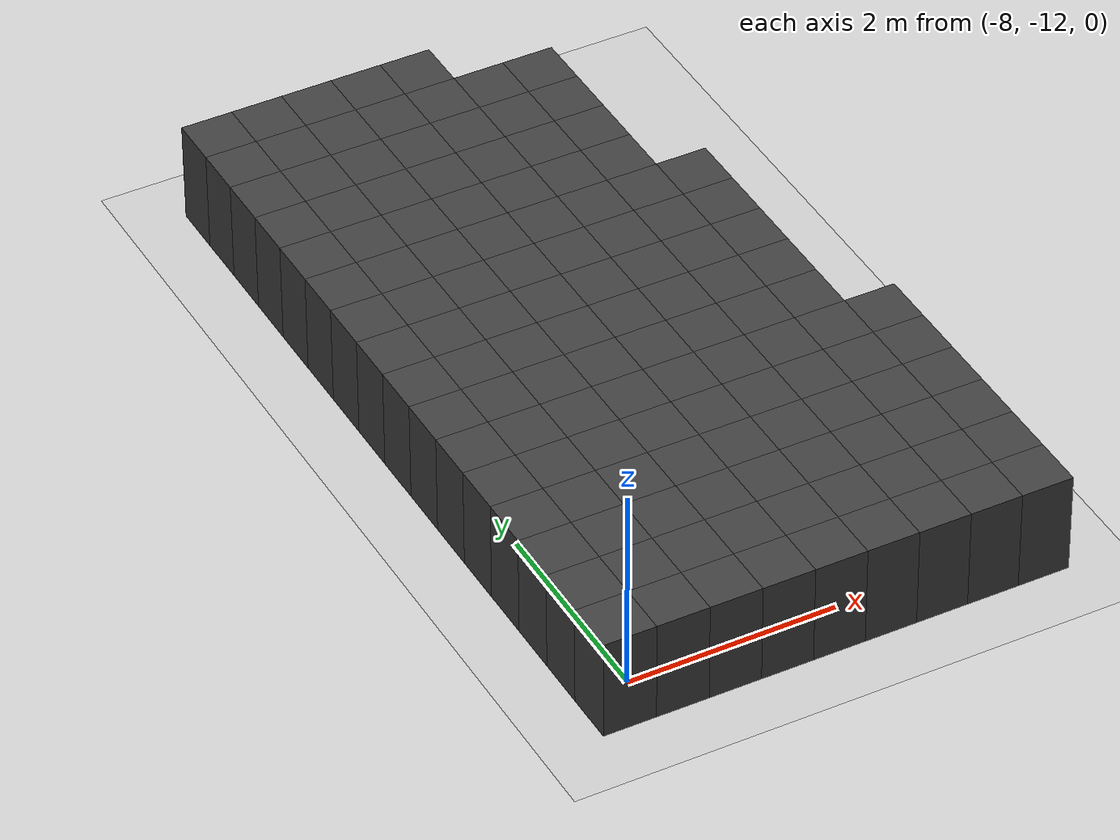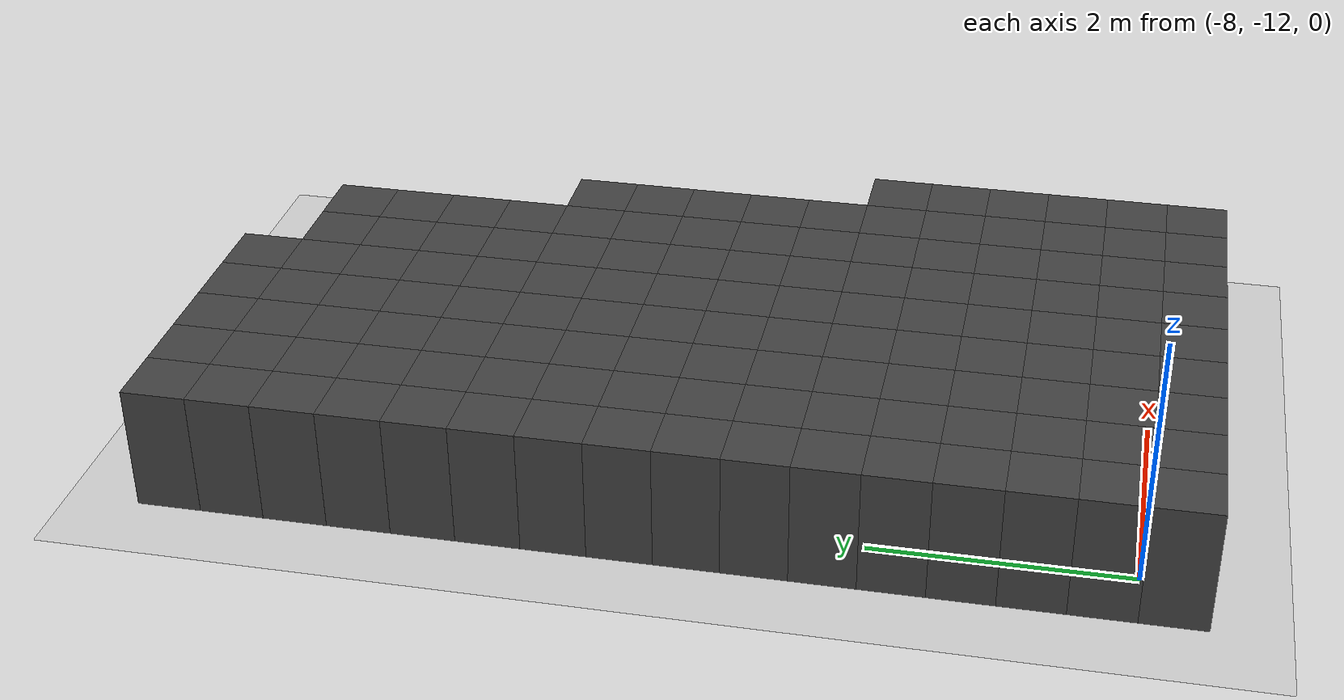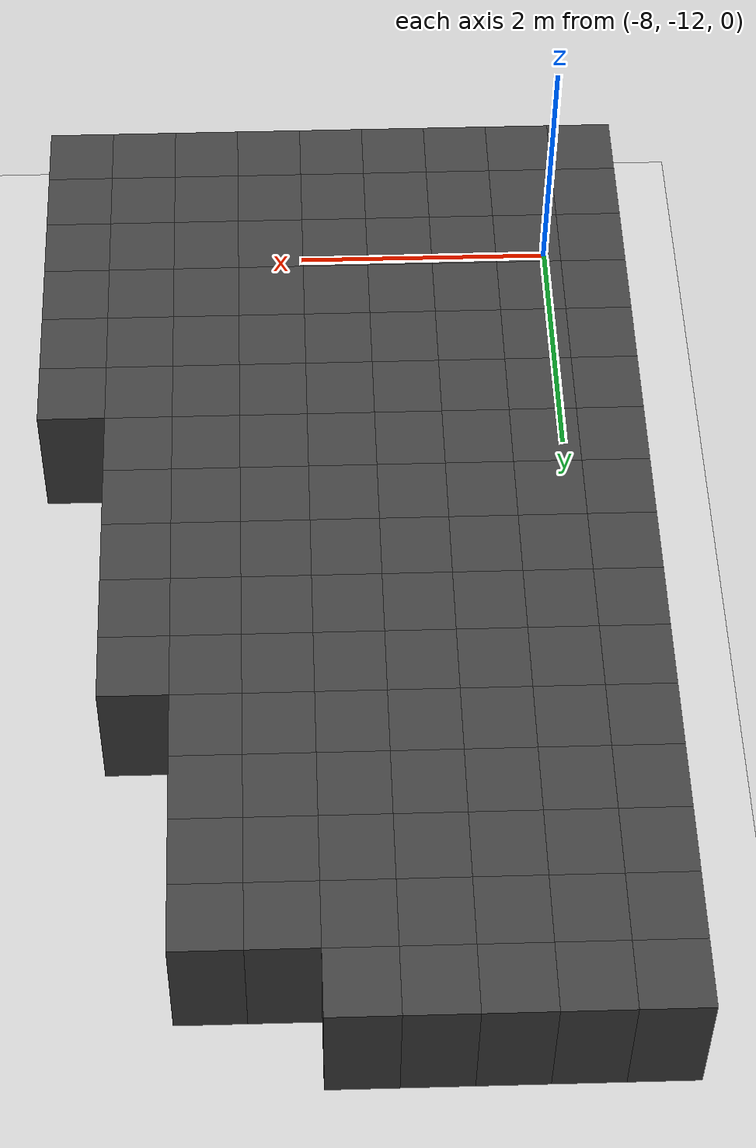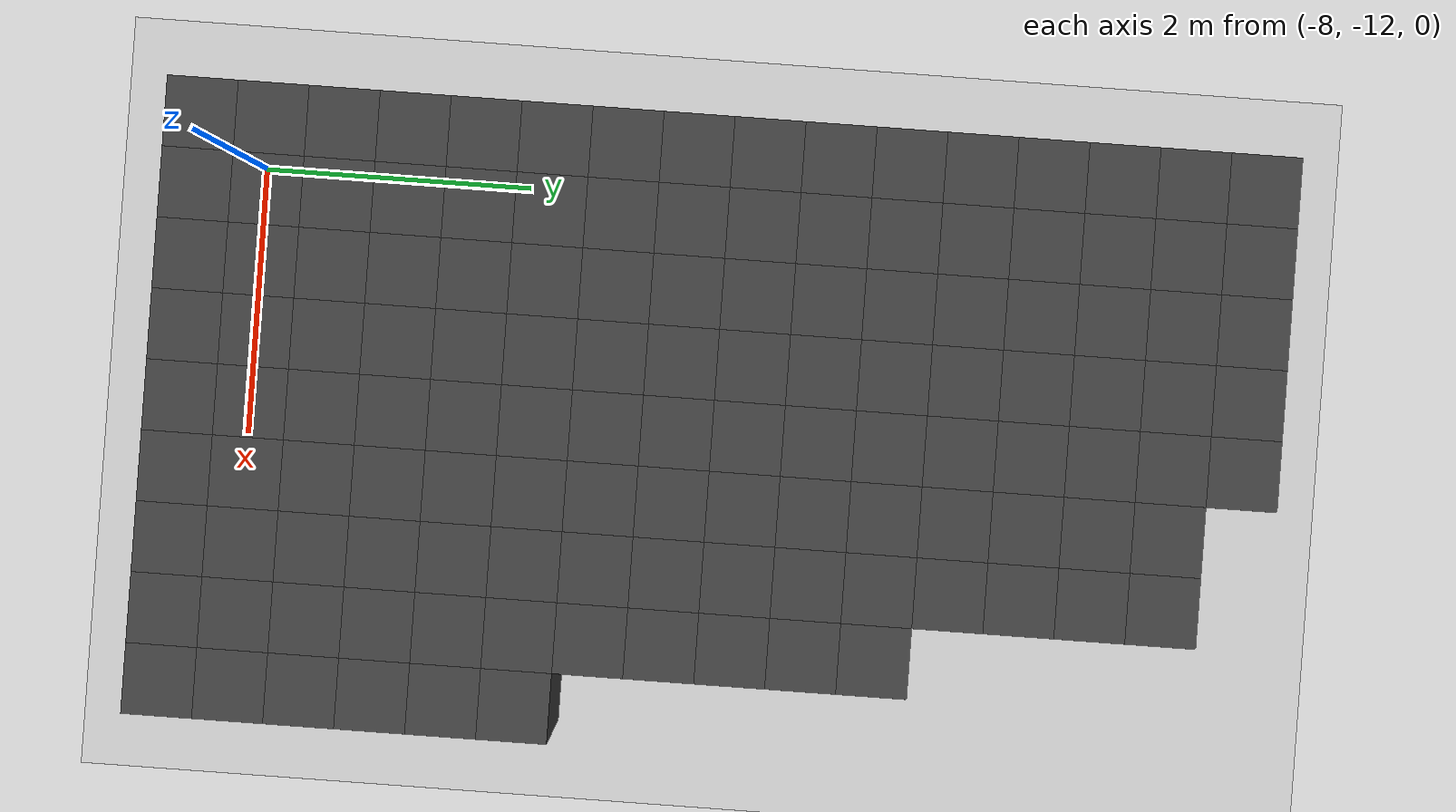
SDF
<sdf version="1.7">
 <world name="map_14735">
  <model name="ground_plane">
   <static>true</static>
   <link name="link">
    <collision name="collision">
     <geometry><plane><normal>0 0 1</normal><size>200 200</size></plane></geometry>
    </collision>
    <visual name="visual">
     <geometry><plane><normal>0 0 1</normal><size>200 200</size></plane></geometry>
     <material><ambient>0.8 0.8 0.8 1</ambient><diffuse>0.8 0.8 0.8 1</diffuse></material>
    </visual>
   </link>
  </model>
  <model name="maze_environment">
   <static>true</static>
   <link name="wall_1110">
    <pose>-8.250 -4.750 0.500 0 0 0</pose>
    <collision name="col"><geometry><box><size>0.5 0.5 1.0</size></box></geometry></collision>
    <visual name="vis">
     <geometry><box><size>0.5 0.5 1.0</size></box></geometry>
     <material><ambient>0.15 0.15 0.15 1</ambient><diffuse>0.25 0.25 0.25 1</diffuse></material>
    </visual>
   </link>
   <link name="wall_1111">
    <pose>-7.750 -4.750 0.500 0 0 0</pose>
    <collision name="col"><geometry><box><size>0.5 0.5 1.0</size></box></geometry></collision>
    <visual name="vis">
     <geometry><box><size>0.5 0.5 1.0</size></box></geometry>
     <material><ambient>0.15 0.15 0.15 1</ambient><diffuse>0.25 0.25 0.25 1</diffuse></material>
    </visual>
   </link>
   <link name="wall_1112">
    <pose>-7.250 -4.750 0.500 0 0 0</pose>
    <collision name="col"><geometry><box><size>0.5 0.5 1.0</size></box></geometry></collision>
    <visual name="vis">
     <geometry><box><size>0.5 0.5 1.0</size></box></geometry>
     <material><ambient>0.15 0.15 0.15 1</ambient><diffuse>0.25 0.25 0.25 1</diffuse></material>
    </visual>
   </link>
   <link name="wall_1113">
    <pose>-6.750 -4.750 0.500 0 0 0</pose>
    <collision name="col"><geometry><box><size>0.5 0.5 1.0</size></box></geometry></collision>
    <visual name="vis">
     <geometry><box><size>0.5 0.5 1.0</size></box></geometry>
     <material><ambient>0.15 0.15 0.15 1</ambient><diffuse>0.25 0.25 0.25 1</diffuse></material>
    </visual>
   </link>
   <link name="wall_1114">
    <pose>-6.250 -4.750 0.500 0 0 0</pose>
    <collision name="col"><geometry><box><size>0.5 0.5 1.0</size></box></geometry></collision>
    <visual name="vis">
     <geometry><box><size>0.5 0.5 1.0</size></box></geometry>
     <material><ambient>0.15 0.15 0.15 1</ambient><diffuse>0.25 0.25 0.25 1</diffuse></material>
    </visual>
   </link>
   <link name="wall_1150">
    <pose>-8.250 -5.250 0.500 0 0 0</pose>
    <collision name="col"><geometry><box><size>0.5 0.5 1.0</size></box></geometry></collision>
    <visual name="vis">
     <geometry><box><size>0.5 0.5 1.0</size></box></geometry>
     <material><ambient>0.15 0.15 0.15 1</ambient><diffuse>0.25 0.25 0.25 1</diffuse></material>
    </visual>
   </link>
   <link name="wall_1151">
    <pose>-7.750 -5.250 0.500 0 0 0</pose>
    <collision name="col"><geometry><box><size>0.5 0.5 1.0</size></box></geometry></collision>
    <visual name="vis">
     <geometry><box><size>0.5 0.5 1.0</size></box></geometry>
     <material><ambient>0.15 0.15 0.15 1</ambient><diffuse>0.25 0.25 0.25 1</diffuse></material>
    </visual>
   </link>
   <link name="wall_1152">
    <pose>-7.250 -5.250 0.500 0 0 0</pose>
    <collision name="col"><geometry><box><size>0.5 0.5 1.0</size></box></geometry></collision>
    <visual name="vis">
     <geometry><box><size>0.5 0.5 1.0</size></box></geometry>
     <material><ambient>0.15 0.15 0.15 1</ambient><diffuse>0.25 0.25 0.25 1</diffuse></material>
    </visual>
   </link>
   <link name="wall_1153">
    <pose>-6.750 -5.250 0.500 0 0 0</pose>
    <collision name="col"><geometry><box><size>0.5 0.5 1.0</size></box></geometry></collision>
    <visual name="vis">
     <geometry><box><size>0.5 0.5 1.0</size></box></geometry>
     <material><ambient>0.15 0.15 0.15 1</ambient><diffuse>0.25 0.25 0.25 1</diffuse></material>
    </visual>
   </link>
   <link name="wall_1154">
    <pose>-6.250 -5.250 0.500 0 0 0</pose>
    <collision name="col"><geometry><box><size>0.5 0.5 1.0</size></box></geometry></collision>
    <visual name="vis">
     <geometry><box><size>0.5 0.5 1.0</size></box></geometry>
     <material><ambient>0.15 0.15 0.15 1</ambient><diffuse>0.25 0.25 0.25 1</diffuse></material>
    </visual>
   </link>
   <link name="wall_1155">
    <pose>-5.750 -5.250 0.500 0 0 0</pose>
    <collision name="col"><geometry><box><size>0.5 0.5 1.0</size></box></geometry></collision>
    <visual name="vis">
     <geometry><box><size>0.5 0.5 1.0</size></box></geometry>
     <material><ambient>0.15 0.15 0.15 1</ambient><diffuse>0.25 0.25 0.25 1</diffuse></material>
    </visual>
   </link>
   <link name="wall_1156">
    <pose>-5.250 -5.250 0.500 0 0 0</pose>
    <collision name="col"><geometry><box><size>0.5 0.5 1.0</size></box></geometry></collision>
    <visual name="vis">
     <geometry><box><size>0.5 0.5 1.0</size></box></geometry>
     <material><ambient>0.15 0.15 0.15 1</ambient><diffuse>0.25 0.25 0.25 1</diffuse></material>
    </visual>
   </link>
   <link name="wall_1188">
    <pose>-8.250 -5.750 0.500 0 0 0</pose>
    <collision name="col"><geometry><box><size>0.5 0.5 1.0</size></box></geometry></collision>
    <visual name="vis">
     <geometry><box><size>0.5 0.5 1.0</size></box></geometry>
     <material><ambient>0.15 0.15 0.15 1</ambient><diffuse>0.25 0.25 0.25 1</diffuse></material>
    </visual>
   </link>
   <link name="wall_1189">
    <pose>-7.750 -5.750 0.500 0 0 0</pose>
    <collision name="col"><geometry><box><size>0.5 0.5 1.0</size></box></geometry></collision>
    <visual name="vis">
     <geometry><box><size>0.5 0.5 1.0</size></box></geometry>
     <material><ambient>0.15 0.15 0.15 1</ambient><diffuse>0.25 0.25 0.25 1</diffuse></material>
    </visual>
   </link>
   <link name="wall_1190">
    <pose>-7.250 -5.750 0.500 0 0 0</pose>
    <collision name="col"><geometry><box><size>0.5 0.5 1.0</size></box></geometry></collision>
    <visual name="vis">
     <geometry><box><size>0.5 0.5 1.0</size></box></geometry>
     <material><ambient>0.15 0.15 0.15 1</ambient><diffuse>0.25 0.25 0.25 1</diffuse></material>
    </visual>
   </link>
   <link name="wall_1191">
    <pose>-6.750 -5.750 0.500 0 0 0</pose>
    <collision name="col"><geometry><box><size>0.5 0.5 1.0</size></box></geometry></collision>
    <visual name="vis">
     <geometry><box><size>0.5 0.5 1.0</size></box></geometry>
     <material><ambient>0.15 0.15 0.15 1</ambient><diffuse>0.25 0.25 0.25 1</diffuse></material>
    </visual>
   </link>
   <link name="wall_1192">
    <pose>-6.250 -5.750 0.500 0 0 0</pose>
    <collision name="col"><geometry><box><size>0.5 0.5 1.0</size></box></geometry></collision>
    <visual name="vis">
     <geometry><box><size>0.5 0.5 1.0</size></box></geometry>
     <material><ambient>0.15 0.15 0.15 1</ambient><diffuse>0.25 0.25 0.25 1</diffuse></material>
    </visual>
   </link>
   <link name="wall_1193">
    <pose>-5.750 -5.750 0.500 0 0 0</pose>
    <collision name="col"><geometry><box><size>0.5 0.5 1.0</size></box></geometry></collision>
    <visual name="vis">
     <geometry><box><size>0.5 0.5 1.0</size></box></geometry>
     <material><ambient>0.15 0.15 0.15 1</ambient><diffuse>0.25 0.25 0.25 1</diffuse></material>
    </visual>
   </link>
   <link name="wall_1194">
    <pose>-5.250 -5.750 0.500 0 0 0</pose>
    <collision name="col"><geometry><box><size>0.5 0.5 1.0</size></box></geometry></collision>
    <visual name="vis">
     <geometry><box><size>0.5 0.5 1.0</size></box></geometry>
     <material><ambient>0.15 0.15 0.15 1</ambient><diffuse>0.25 0.25 0.25 1</diffuse></material>
    </visual>
   </link>
   <link name="wall_1226">
    <pose>-8.250 -6.250 0.500 0 0 0</pose>
    <collision name="col"><geometry><box><size>0.5 0.5 1.0</size></box></geometry></collision>
    <visual name="vis">
     <geometry><box><size>0.5 0.5 1.0</size></box></geometry>
     <material><ambient>0.15 0.15 0.15 1</ambient><diffuse>0.25 0.25 0.25 1</diffuse></material>
    </visual>
   </link>
   <link name="wall_1227">
    <pose>-7.750 -6.250 0.500 0 0 0</pose>
    <collision name="col"><geometry><box><size>0.5 0.5 1.0</size></box></geometry></collision>
    <visual name="vis">
     <geometry><box><size>0.5 0.5 1.0</size></box></geometry>
     <material><ambient>0.15 0.15 0.15 1</ambient><diffuse>0.25 0.25 0.25 1</diffuse></material>
    </visual>
   </link>
   <link name="wall_1228">
    <pose>-7.250 -6.250 0.500 0 0 0</pose>
    <collision name="col"><geometry><box><size>0.5 0.5 1.0</size></box></geometry></collision>
    <visual name="vis">
     <geometry><box><size>0.5 0.5 1.0</size></box></geometry>
     <material><ambient>0.15 0.15 0.15 1</ambient><diffuse>0.25 0.25 0.25 1</diffuse></material>
    </visual>
   </link>
   <link name="wall_1229">
    <pose>-6.750 -6.250 0.500 0 0 0</pose>
    <collision name="col"><geometry><box><size>0.5 0.5 1.0</size></box></geometry></collision>
    <visual name="vis">
     <geometry><box><size>0.5 0.5 1.0</size></box></geometry>
     <material><ambient>0.15 0.15 0.15 1</ambient><diffuse>0.25 0.25 0.25 1</diffuse></material>
    </visual>
   </link>
   <link name="wall_1230">
    <pose>-6.250 -6.250 0.500 0 0 0</pose>
    <collision name="col"><geometry><box><size>0.5 0.5 1.0</size></box></geometry></collision>
    <visual name="vis">
     <geometry><box><size>0.5 0.5 1.0</size></box></geometry>
     <material><ambient>0.15 0.15 0.15 1</ambient><diffuse>0.25 0.25 0.25 1</diffuse></material>
    </visual>
   </link>
   <link name="wall_1231">
    <pose>-5.750 -6.250 0.500 0 0 0</pose>
    <collision name="col"><geometry><box><size>0.5 0.5 1.0</size></box></geometry></collision>
    <visual name="vis">
     <geometry><box><size>0.5 0.5 1.0</size></box></geometry>
     <material><ambient>0.15 0.15 0.15 1</ambient><diffuse>0.25 0.25 0.25 1</diffuse></material>
    </visual>
   </link>
   <link name="wall_1232">
    <pose>-5.250 -6.250 0.500 0 0 0</pose>
    <collision name="col"><geometry><box><size>0.5 0.5 1.0</size></box></geometry></collision>
    <visual name="vis">
     <geometry><box><size>0.5 0.5 1.0</size></box></geometry>
     <material><ambient>0.15 0.15 0.15 1</ambient><diffuse>0.25 0.25 0.25 1</diffuse></material>
    </visual>
   </link>
   <link name="wall_1264">
    <pose>-8.250 -6.750 0.500 0 0 0</pose>
    <collision name="col"><geometry><box><size>0.5 0.5 1.0</size></box></geometry></collision>
    <visual name="vis">
     <geometry><box><size>0.5 0.5 1.0</size></box></geometry>
     <material><ambient>0.15 0.15 0.15 1</ambient><diffuse>0.25 0.25 0.25 1</diffuse></material>
    </visual>
   </link>
   <link name="wall_1265">
    <pose>-7.750 -6.750 0.500 0 0 0</pose>
    <collision name="col"><geometry><box><size>0.5 0.5 1.0</size></box></geometry></collision>
    <visual name="vis">
     <geometry><box><size>0.5 0.5 1.0</size></box></geometry>
     <material><ambient>0.15 0.15 0.15 1</ambient><diffuse>0.25 0.25 0.25 1</diffuse></material>
    </visual>
   </link>
   <link name="wall_1266">
    <pose>-7.250 -6.750 0.500 0 0 0</pose>
    <collision name="col"><geometry><box><size>0.5 0.5 1.0</size></box></geometry></collision>
    <visual name="vis">
     <geometry><box><size>0.5 0.5 1.0</size></box></geometry>
     <material><ambient>0.15 0.15 0.15 1</ambient><diffuse>0.25 0.25 0.25 1</diffuse></material>
    </visual>
   </link>
   <link name="wall_1267">
    <pose>-6.750 -6.750 0.500 0 0 0</pose>
    <collision name="col"><geometry><box><size>0.5 0.5 1.0</size></box></geometry></collision>
    <visual name="vis">
     <geometry><box><size>0.5 0.5 1.0</size></box></geometry>
     <material><ambient>0.15 0.15 0.15 1</ambient><diffuse>0.25 0.25 0.25 1</diffuse></material>
    </visual>
   </link>
   <link name="wall_1268">
    <pose>-6.250 -6.750 0.500 0 0 0</pose>
    <collision name="col"><geometry><box><size>0.5 0.5 1.0</size></box></geometry></collision>
    <visual name="vis">
     <geometry><box><size>0.5 0.5 1.0</size></box></geometry>
     <material><ambient>0.15 0.15 0.15 1</ambient><diffuse>0.25 0.25 0.25 1</diffuse></material>
    </visual>
   </link>
   <link name="wall_1269">
    <pose>-5.750 -6.750 0.500 0 0 0</pose>
    <collision name="col"><geometry><box><size>0.5 0.5 1.0</size></box></geometry></collision>
    <visual name="vis">
     <geometry><box><size>0.5 0.5 1.0</size></box></geometry>
     <material><ambient>0.15 0.15 0.15 1</ambient><diffuse>0.25 0.25 0.25 1</diffuse></material>
    </visual>
   </link>
   <link name="wall_1270">
    <pose>-5.250 -6.750 0.500 0 0 0</pose>
    <collision name="col"><geometry><box><size>0.5 0.5 1.0</size></box></geometry></collision>
    <visual name="vis">
     <geometry><box><size>0.5 0.5 1.0</size></box></geometry>
     <material><ambient>0.15 0.15 0.15 1</ambient><diffuse>0.25 0.25 0.25 1</diffuse></material>
    </visual>
   </link>
   <link name="wall_1304">
    <pose>-8.250 -7.250 0.500 0 0 0</pose>
    <collision name="col"><geometry><box><size>0.5 0.5 1.0</size></box></geometry></collision>
    <visual name="vis">
     <geometry><box><size>0.5 0.5 1.0</size></box></geometry>
     <material><ambient>0.15 0.15 0.15 1</ambient><diffuse>0.25 0.25 0.25 1</diffuse></material>
    </visual>
   </link>
   <link name="wall_1305">
    <pose>-7.750 -7.250 0.500 0 0 0</pose>
    <collision name="col"><geometry><box><size>0.5 0.5 1.0</size></box></geometry></collision>
    <visual name="vis">
     <geometry><box><size>0.5 0.5 1.0</size></box></geometry>
     <material><ambient>0.15 0.15 0.15 1</ambient><diffuse>0.25 0.25 0.25 1</diffuse></material>
    </visual>
   </link>
   <link name="wall_1306">
    <pose>-7.250 -7.250 0.500 0 0 0</pose>
    <collision name="col"><geometry><box><size>0.5 0.5 1.0</size></box></geometry></collision>
    <visual name="vis">
     <geometry><box><size>0.5 0.5 1.0</size></box></geometry>
     <material><ambient>0.15 0.15 0.15 1</ambient><diffuse>0.25 0.25 0.25 1</diffuse></material>
    </visual>
   </link>
   <link name="wall_1307">
    <pose>-6.750 -7.250 0.500 0 0 0</pose>
    <collision name="col"><geometry><box><size>0.5 0.5 1.0</size></box></geometry></collision>
    <visual name="vis">
     <geometry><box><size>0.5 0.5 1.0</size></box></geometry>
     <material><ambient>0.15 0.15 0.15 1</ambient><diffuse>0.25 0.25 0.25 1</diffuse></material>
    </visual>
   </link>
   <link name="wall_1308">
    <pose>-6.250 -7.250 0.500 0 0 0</pose>
    <collision name="col"><geometry><box><size>0.5 0.5 1.0</size></box></geometry></collision>
    <visual name="vis">
     <geometry><box><size>0.5 0.5 1.0</size></box></geometry>
     <material><ambient>0.15 0.15 0.15 1</ambient><diffuse>0.25 0.25 0.25 1</diffuse></material>
    </visual>
   </link>
   <link name="wall_1309">
    <pose>-5.750 -7.250 0.500 0 0 0</pose>
    <collision name="col"><geometry><box><size>0.5 0.5 1.0</size></box></geometry></collision>
    <visual name="vis">
     <geometry><box><size>0.5 0.5 1.0</size></box></geometry>
     <material><ambient>0.15 0.15 0.15 1</ambient><diffuse>0.25 0.25 0.25 1</diffuse></material>
    </visual>
   </link>
   <link name="wall_1310">
    <pose>-5.250 -7.250 0.500 0 0 0</pose>
    <collision name="col"><geometry><box><size>0.5 0.5 1.0</size></box></geometry></collision>
    <visual name="vis">
     <geometry><box><size>0.5 0.5 1.0</size></box></geometry>
     <material><ambient>0.15 0.15 0.15 1</ambient><diffuse>0.25 0.25 0.25 1</diffuse></material>
    </visual>
   </link>
   <link name="wall_1311">
    <pose>-4.750 -7.250 0.500 0 0 0</pose>
    <collision name="col"><geometry><box><size>0.5 0.5 1.0</size></box></geometry></collision>
    <visual name="vis">
     <geometry><box><size>0.5 0.5 1.0</size></box></geometry>
     <material><ambient>0.15 0.15 0.15 1</ambient><diffuse>0.25 0.25 0.25 1</diffuse></material>
    </visual>
   </link>
   <link name="wall_1345">
    <pose>-8.250 -7.750 0.500 0 0 0</pose>
    <collision name="col"><geometry><box><size>0.5 0.5 1.0</size></box></geometry></collision>
    <visual name="vis">
     <geometry><box><size>0.5 0.5 1.0</size></box></geometry>
     <material><ambient>0.15 0.15 0.15 1</ambient><diffuse>0.25 0.25 0.25 1</diffuse></material>
    </visual>
   </link>
   <link name="wall_1346">
    <pose>-7.750 -7.750 0.500 0 0 0</pose>
    <collision name="col"><geometry><box><size>0.5 0.5 1.0</size></box></geometry></collision>
    <visual name="vis">
     <geometry><box><size>0.5 0.5 1.0</size></box></geometry>
     <material><ambient>0.15 0.15 0.15 1</ambient><diffuse>0.25 0.25 0.25 1</diffuse></material>
    </visual>
   </link>
   <link name="wall_1347">
    <pose>-7.250 -7.750 0.500 0 0 0</pose>
    <collision name="col"><geometry><box><size>0.5 0.5 1.0</size></box></geometry></collision>
    <visual name="vis">
     <geometry><box><size>0.5 0.5 1.0</size></box></geometry>
     <material><ambient>0.15 0.15 0.15 1</ambient><diffuse>0.25 0.25 0.25 1</diffuse></material>
    </visual>
   </link>
   <link name="wall_1348">
    <pose>-6.750 -7.750 0.500 0 0 0</pose>
    <collision name="col"><geometry><box><size>0.5 0.5 1.0</size></box></geometry></collision>
    <visual name="vis">
     <geometry><box><size>0.5 0.5 1.0</size></box></geometry>
     <material><ambient>0.15 0.15 0.15 1</ambient><diffuse>0.25 0.25 0.25 1</diffuse></material>
    </visual>
   </link>
   <link name="wall_1349">
    <pose>-6.250 -7.750 0.500 0 0 0</pose>
    <collision name="col"><geometry><box><size>0.5 0.5 1.0</size></box></geometry></collision>
    <visual name="vis">
     <geometry><box><size>0.5 0.5 1.0</size></box></geometry>
     <material><ambient>0.15 0.15 0.15 1</ambient><diffuse>0.25 0.25 0.25 1</diffuse></material>
    </visual>
   </link>
   <link name="wall_1350">
    <pose>-5.750 -7.750 0.500 0 0 0</pose>
    <collision name="col"><geometry><box><size>0.5 0.5 1.0</size></box></geometry></collision>
    <visual name="vis">
     <geometry><box><size>0.5 0.5 1.0</size></box></geometry>
     <material><ambient>0.15 0.15 0.15 1</ambient><diffuse>0.25 0.25 0.25 1</diffuse></material>
    </visual>
   </link>
   <link name="wall_1351">
    <pose>-5.250 -7.750 0.500 0 0 0</pose>
    <collision name="col"><geometry><box><size>0.5 0.5 1.0</size></box></geometry></collision>
    <visual name="vis">
     <geometry><box><size>0.5 0.5 1.0</size></box></geometry>
     <material><ambient>0.15 0.15 0.15 1</ambient><diffuse>0.25 0.25 0.25 1</diffuse></material>
    </visual>
   </link>
   <link name="wall_1352">
    <pose>-4.750 -7.750 0.500 0 0 0</pose>
    <collision name="col"><geometry><box><size>0.5 0.5 1.0</size></box></geometry></collision>
    <visual name="vis">
     <geometry><box><size>0.5 0.5 1.0</size></box></geometry>
     <material><ambient>0.15 0.15 0.15 1</ambient><diffuse>0.25 0.25 0.25 1</diffuse></material>
    </visual>
   </link>
   <link name="wall_1387">
    <pose>-8.250 -8.250 0.500 0 0 0</pose>
    <collision name="col"><geometry><box><size>0.5 0.5 1.0</size></box></geometry></collision>
    <visual name="vis">
     <geometry><box><size>0.5 0.5 1.0</size></box></geometry>
     <material><ambient>0.15 0.15 0.15 1</ambient><diffuse>0.25 0.25 0.25 1</diffuse></material>
    </visual>
   </link>
   <link name="wall_1388">
    <pose>-7.750 -8.250 0.500 0 0 0</pose>
    <collision name="col"><geometry><box><size>0.5 0.5 1.0</size></box></geometry></collision>
    <visual name="vis">
     <geometry><box><size>0.5 0.5 1.0</size></box></geometry>
     <material><ambient>0.15 0.15 0.15 1</ambient><diffuse>0.25 0.25 0.25 1</diffuse></material>
    </visual>
   </link>
   <link name="wall_1389">
    <pose>-7.250 -8.250 0.500 0 0 0</pose>
    <collision name="col"><geometry><box><size>0.5 0.5 1.0</size></box></geometry></collision>
    <visual name="vis">
     <geometry><box><size>0.5 0.5 1.0</size></box></geometry>
     <material><ambient>0.15 0.15 0.15 1</ambient><diffuse>0.25 0.25 0.25 1</diffuse></material>
    </visual>
   </link>
   <link name="wall_1390">
    <pose>-6.750 -8.250 0.500 0 0 0</pose>
    <collision name="col"><geometry><box><size>0.5 0.5 1.0</size></box></geometry></collision>
    <visual name="vis">
     <geometry><box><size>0.5 0.5 1.0</size></box></geometry>
     <material><ambient>0.15 0.15 0.15 1</ambient><diffuse>0.25 0.25 0.25 1</diffuse></material>
    </visual>
   </link>
   <link name="wall_1391">
    <pose>-6.250 -8.250 0.500 0 0 0</pose>
    <collision name="col"><geometry><box><size>0.5 0.5 1.0</size></box></geometry></collision>
    <visual name="vis">
     <geometry><box><size>0.5 0.5 1.0</size></box></geometry>
     <material><ambient>0.15 0.15 0.15 1</ambient><diffuse>0.25 0.25 0.25 1</diffuse></material>
    </visual>
   </link>
   <link name="wall_1392">
    <pose>-5.750 -8.250 0.500 0 0 0</pose>
    <collision name="col"><geometry><box><size>0.5 0.5 1.0</size></box></geometry></collision>
    <visual name="vis">
     <geometry><box><size>0.5 0.5 1.0</size></box></geometry>
     <material><ambient>0.15 0.15 0.15 1</ambient><diffuse>0.25 0.25 0.25 1</diffuse></material>
    </visual>
   </link>
   <link name="wall_1393">
    <pose>-5.250 -8.250 0.500 0 0 0</pose>
    <collision name="col"><geometry><box><size>0.5 0.5 1.0</size></box></geometry></collision>
    <visual name="vis">
     <geometry><box><size>0.5 0.5 1.0</size></box></geometry>
     <material><ambient>0.15 0.15 0.15 1</ambient><diffuse>0.25 0.25 0.25 1</diffuse></material>
    </visual>
   </link>
   <link name="wall_1394">
    <pose>-4.750 -8.250 0.500 0 0 0</pose>
    <collision name="col"><geometry><box><size>0.5 0.5 1.0</size></box></geometry></collision>
    <visual name="vis">
     <geometry><box><size>0.5 0.5 1.0</size></box></geometry>
     <material><ambient>0.15 0.15 0.15 1</ambient><diffuse>0.25 0.25 0.25 1</diffuse></material>
    </visual>
   </link>
   <link name="wall_1429">
    <pose>-8.250 -8.750 0.500 0 0 0</pose>
    <collision name="col"><geometry><box><size>0.5 0.5 1.0</size></box></geometry></collision>
    <visual name="vis">
     <geometry><box><size>0.5 0.5 1.0</size></box></geometry>
     <material><ambient>0.15 0.15 0.15 1</ambient><diffuse>0.25 0.25 0.25 1</diffuse></material>
    </visual>
   </link>
   <link name="wall_1430">
    <pose>-7.750 -8.750 0.500 0 0 0</pose>
    <collision name="col"><geometry><box><size>0.5 0.5 1.0</size></box></geometry></collision>
    <visual name="vis">
     <geometry><box><size>0.5 0.5 1.0</size></box></geometry>
     <material><ambient>0.15 0.15 0.15 1</ambient><diffuse>0.25 0.25 0.25 1</diffuse></material>
    </visual>
   </link>
   <link name="wall_1431">
    <pose>-7.250 -8.750 0.500 0 0 0</pose>
    <collision name="col"><geometry><box><size>0.5 0.5 1.0</size></box></geometry></collision>
    <visual name="vis">
     <geometry><box><size>0.5 0.5 1.0</size></box></geometry>
     <material><ambient>0.15 0.15 0.15 1</ambient><diffuse>0.25 0.25 0.25 1</diffuse></material>
    </visual>
   </link>
   <link name="wall_1432">
    <pose>-6.750 -8.750 0.500 0 0 0</pose>
    <collision name="col"><geometry><box><size>0.5 0.5 1.0</size></box></geometry></collision>
    <visual name="vis">
     <geometry><box><size>0.5 0.5 1.0</size></box></geometry>
     <material><ambient>0.15 0.15 0.15 1</ambient><diffuse>0.25 0.25 0.25 1</diffuse></material>
    </visual>
   </link>
   <link name="wall_1433">
    <pose>-6.250 -8.750 0.500 0 0 0</pose>
    <collision name="col"><geometry><box><size>0.5 0.5 1.0</size></box></geometry></collision>
    <visual name="vis">
     <geometry><box><size>0.5 0.5 1.0</size></box></geometry>
     <material><ambient>0.15 0.15 0.15 1</ambient><diffuse>0.25 0.25 0.25 1</diffuse></material>
    </visual>
   </link>
   <link name="wall_1434">
    <pose>-5.750 -8.750 0.500 0 0 0</pose>
    <collision name="col"><geometry><box><size>0.5 0.5 1.0</size></box></geometry></collision>
    <visual name="vis">
     <geometry><box><size>0.5 0.5 1.0</size></box></geometry>
     <material><ambient>0.15 0.15 0.15 1</ambient><diffuse>0.25 0.25 0.25 1</diffuse></material>
    </visual>
   </link>
   <link name="wall_1435">
    <pose>-5.250 -8.750 0.500 0 0 0</pose>
    <collision name="col"><geometry><box><size>0.5 0.5 1.0</size></box></geometry></collision>
    <visual name="vis">
     <geometry><box><size>0.5 0.5 1.0</size></box></geometry>
     <material><ambient>0.15 0.15 0.15 1</ambient><diffuse>0.25 0.25 0.25 1</diffuse></material>
    </visual>
   </link>
   <link name="wall_1436">
    <pose>-4.750 -8.750 0.500 0 0 0</pose>
    <collision name="col"><geometry><box><size>0.5 0.5 1.0</size></box></geometry></collision>
    <visual name="vis">
     <geometry><box><size>0.5 0.5 1.0</size></box></geometry>
     <material><ambient>0.15 0.15 0.15 1</ambient><diffuse>0.25 0.25 0.25 1</diffuse></material>
    </visual>
   </link>
   <link name="wall_1471">
    <pose>-8.250 -9.250 0.500 0 0 0</pose>
    <collision name="col"><geometry><box><size>0.5 0.5 1.0</size></box></geometry></collision>
    <visual name="vis">
     <geometry><box><size>0.5 0.5 1.0</size></box></geometry>
     <material><ambient>0.15 0.15 0.15 1</ambient><diffuse>0.25 0.25 0.25 1</diffuse></material>
    </visual>
   </link>
   <link name="wall_1472">
    <pose>-7.750 -9.250 0.500 0 0 0</pose>
    <collision name="col"><geometry><box><size>0.5 0.5 1.0</size></box></geometry></collision>
    <visual name="vis">
     <geometry><box><size>0.5 0.5 1.0</size></box></geometry>
     <material><ambient>0.15 0.15 0.15 1</ambient><diffuse>0.25 0.25 0.25 1</diffuse></material>
    </visual>
   </link>
   <link name="wall_1473">
    <pose>-7.250 -9.250 0.500 0 0 0</pose>
    <collision name="col"><geometry><box><size>0.5 0.5 1.0</size></box></geometry></collision>
    <visual name="vis">
     <geometry><box><size>0.5 0.5 1.0</size></box></geometry>
     <material><ambient>0.15 0.15 0.15 1</ambient><diffuse>0.25 0.25 0.25 1</diffuse></material>
    </visual>
   </link>
   <link name="wall_1474">
    <pose>-6.750 -9.250 0.500 0 0 0</pose>
    <collision name="col"><geometry><box><size>0.5 0.5 1.0</size></box></geometry></collision>
    <visual name="vis">
     <geometry><box><size>0.5 0.5 1.0</size></box></geometry>
     <material><ambient>0.15 0.15 0.15 1</ambient><diffuse>0.25 0.25 0.25 1</diffuse></material>
    </visual>
   </link>
   <link name="wall_1475">
    <pose>-6.250 -9.250 0.500 0 0 0</pose>
    <collision name="col"><geometry><box><size>0.5 0.5 1.0</size></box></geometry></collision>
    <visual name="vis">
     <geometry><box><size>0.5 0.5 1.0</size></box></geometry>
     <material><ambient>0.15 0.15 0.15 1</ambient><diffuse>0.25 0.25 0.25 1</diffuse></material>
    </visual>
   </link>
   <link name="wall_1476">
    <pose>-5.750 -9.250 0.500 0 0 0</pose>
    <collision name="col"><geometry><box><size>0.5 0.5 1.0</size></box></geometry></collision>
    <visual name="vis">
     <geometry><box><size>0.5 0.5 1.0</size></box></geometry>
     <material><ambient>0.15 0.15 0.15 1</ambient><diffuse>0.25 0.25 0.25 1</diffuse></material>
    </visual>
   </link>
   <link name="wall_1477">
    <pose>-5.250 -9.250 0.500 0 0 0</pose>
    <collision name="col"><geometry><box><size>0.5 0.5 1.0</size></box></geometry></collision>
    <visual name="vis">
     <geometry><box><size>0.5 0.5 1.0</size></box></geometry>
     <material><ambient>0.15 0.15 0.15 1</ambient><diffuse>0.25 0.25 0.25 1</diffuse></material>
    </visual>
   </link>
   <link name="wall_1478">
    <pose>-4.750 -9.250 0.500 0 0 0</pose>
    <collision name="col"><geometry><box><size>0.5 0.5 1.0</size></box></geometry></collision>
    <visual name="vis">
     <geometry><box><size>0.5 0.5 1.0</size></box></geometry>
     <material><ambient>0.15 0.15 0.15 1</ambient><diffuse>0.25 0.25 0.25 1</diffuse></material>
    </visual>
   </link>
   <link name="wall_1513">
    <pose>-8.250 -9.750 0.500 0 0 0</pose>
    <collision name="col"><geometry><box><size>0.5 0.5 1.0</size></box></geometry></collision>
    <visual name="vis">
     <geometry><box><size>0.5 0.5 1.0</size></box></geometry>
     <material><ambient>0.15 0.15 0.15 1</ambient><diffuse>0.25 0.25 0.25 1</diffuse></material>
    </visual>
   </link>
   <link name="wall_1514">
    <pose>-7.750 -9.750 0.500 0 0 0</pose>
    <collision name="col"><geometry><box><size>0.5 0.5 1.0</size></box></geometry></collision>
    <visual name="vis">
     <geometry><box><size>0.5 0.5 1.0</size></box></geometry>
     <material><ambient>0.15 0.15 0.15 1</ambient><diffuse>0.25 0.25 0.25 1</diffuse></material>
    </visual>
   </link>
   <link name="wall_1515">
    <pose>-7.250 -9.750 0.500 0 0 0</pose>
    <collision name="col"><geometry><box><size>0.5 0.5 1.0</size></box></geometry></collision>
    <visual name="vis">
     <geometry><box><size>0.5 0.5 1.0</size></box></geometry>
     <material><ambient>0.15 0.15 0.15 1</ambient><diffuse>0.25 0.25 0.25 1</diffuse></material>
    </visual>
   </link>
   <link name="wall_1516">
    <pose>-6.750 -9.750 0.500 0 0 0</pose>
    <collision name="col"><geometry><box><size>0.5 0.5 1.0</size></box></geometry></collision>
    <visual name="vis">
     <geometry><box><size>0.5 0.5 1.0</size></box></geometry>
     <material><ambient>0.15 0.15 0.15 1</ambient><diffuse>0.25 0.25 0.25 1</diffuse></material>
    </visual>
   </link>
   <link name="wall_1517">
    <pose>-6.250 -9.750 0.500 0 0 0</pose>
    <collision name="col"><geometry><box><size>0.5 0.5 1.0</size></box></geometry></collision>
    <visual name="vis">
     <geometry><box><size>0.5 0.5 1.0</size></box></geometry>
     <material><ambient>0.15 0.15 0.15 1</ambient><diffuse>0.25 0.25 0.25 1</diffuse></material>
    </visual>
   </link>
   <link name="wall_1518">
    <pose>-5.750 -9.750 0.500 0 0 0</pose>
    <collision name="col"><geometry><box><size>0.5 0.5 1.0</size></box></geometry></collision>
    <visual name="vis">
     <geometry><box><size>0.5 0.5 1.0</size></box></geometry>
     <material><ambient>0.15 0.15 0.15 1</ambient><diffuse>0.25 0.25 0.25 1</diffuse></material>
    </visual>
   </link>
   <link name="wall_1519">
    <pose>-5.250 -9.750 0.500 0 0 0</pose>
    <collision name="col"><geometry><box><size>0.5 0.5 1.0</size></box></geometry></collision>
    <visual name="vis">
     <geometry><box><size>0.5 0.5 1.0</size></box></geometry>
     <material><ambient>0.15 0.15 0.15 1</ambient><diffuse>0.25 0.25 0.25 1</diffuse></material>
    </visual>
   </link>
   <link name="wall_1520">
    <pose>-4.750 -9.750 0.500 0 0 0</pose>
    <collision name="col"><geometry><box><size>0.5 0.5 1.0</size></box></geometry></collision>
    <visual name="vis">
     <geometry><box><size>0.5 0.5 1.0</size></box></geometry>
     <material><ambient>0.15 0.15 0.15 1</ambient><diffuse>0.25 0.25 0.25 1</diffuse></material>
    </visual>
   </link>
   <link name="wall_1521">
    <pose>-4.250 -9.750 0.500 0 0 0</pose>
    <collision name="col"><geometry><box><size>0.5 0.5 1.0</size></box></geometry></collision>
    <visual name="vis">
     <geometry><box><size>0.5 0.5 1.0</size></box></geometry>
     <material><ambient>0.15 0.15 0.15 1</ambient><diffuse>0.25 0.25 0.25 1</diffuse></material>
    </visual>
   </link>
   <link name="wall_1562">
    <pose>-8.250 -10.250 0.500 0 0 0</pose>
    <collision name="col"><geometry><box><size>0.5 0.5 1.0</size></box></geometry></collision>
    <visual name="vis">
     <geometry><box><size>0.5 0.5 1.0</size></box></geometry>
     <material><ambient>0.15 0.15 0.15 1</ambient><diffuse>0.25 0.25 0.25 1</diffuse></material>
    </visual>
   </link>
   <link name="wall_1563">
    <pose>-7.750 -10.250 0.500 0 0 0</pose>
    <collision name="col"><geometry><box><size>0.5 0.5 1.0</size></box></geometry></collision>
    <visual name="vis">
     <geometry><box><size>0.5 0.5 1.0</size></box></geometry>
     <material><ambient>0.15 0.15 0.15 1</ambient><diffuse>0.25 0.25 0.25 1</diffuse></material>
    </visual>
   </link>
   <link name="wall_1564">
    <pose>-7.250 -10.250 0.500 0 0 0</pose>
    <collision name="col"><geometry><box><size>0.5 0.5 1.0</size></box></geometry></collision>
    <visual name="vis">
     <geometry><box><size>0.5 0.5 1.0</size></box></geometry>
     <material><ambient>0.15 0.15 0.15 1</ambient><diffuse>0.25 0.25 0.25 1</diffuse></material>
    </visual>
   </link>
   <link name="wall_1565">
    <pose>-6.750 -10.250 0.500 0 0 0</pose>
    <collision name="col"><geometry><box><size>0.5 0.5 1.0</size></box></geometry></collision>
    <visual name="vis">
     <geometry><box><size>0.5 0.5 1.0</size></box></geometry>
     <material><ambient>0.15 0.15 0.15 1</ambient><diffuse>0.25 0.25 0.25 1</diffuse></material>
    </visual>
   </link>
   <link name="wall_1566">
    <pose>-6.250 -10.250 0.500 0 0 0</pose>
    <collision name="col"><geometry><box><size>0.5 0.5 1.0</size></box></geometry></collision>
    <visual name="vis">
     <geometry><box><size>0.5 0.5 1.0</size></box></geometry>
     <material><ambient>0.15 0.15 0.15 1</ambient><diffuse>0.25 0.25 0.25 1</diffuse></material>
    </visual>
   </link>
   <link name="wall_1567">
    <pose>-5.750 -10.250 0.500 0 0 0</pose>
    <collision name="col"><geometry><box><size>0.5 0.5 1.0</size></box></geometry></collision>
    <visual name="vis">
     <geometry><box><size>0.5 0.5 1.0</size></box></geometry>
     <material><ambient>0.15 0.15 0.15 1</ambient><diffuse>0.25 0.25 0.25 1</diffuse></material>
    </visual>
   </link>
   <link name="wall_1568">
    <pose>-5.250 -10.250 0.500 0 0 0</pose>
    <collision name="col"><geometry><box><size>0.5 0.5 1.0</size></box></geometry></collision>
    <visual name="vis">
     <geometry><box><size>0.5 0.5 1.0</size></box></geometry>
     <material><ambient>0.15 0.15 0.15 1</ambient><diffuse>0.25 0.25 0.25 1</diffuse></material>
    </visual>
   </link>
   <link name="wall_1569">
    <pose>-4.750 -10.250 0.500 0 0 0</pose>
    <collision name="col"><geometry><box><size>0.5 0.5 1.0</size></box></geometry></collision>
    <visual name="vis">
     <geometry><box><size>0.5 0.5 1.0</size></box></geometry>
     <material><ambient>0.15 0.15 0.15 1</ambient><diffuse>0.25 0.25 0.25 1</diffuse></material>
    </visual>
   </link>
   <link name="wall_1570">
    <pose>-4.250 -10.250 0.500 0 0 0</pose>
    <collision name="col"><geometry><box><size>0.5 0.5 1.0</size></box></geometry></collision>
    <visual name="vis">
     <geometry><box><size>0.5 0.5 1.0</size></box></geometry>
     <material><ambient>0.15 0.15 0.15 1</ambient><diffuse>0.25 0.25 0.25 1</diffuse></material>
    </visual>
   </link>
   <link name="wall_1611">
    <pose>-8.250 -10.750 0.500 0 0 0</pose>
    <collision name="col"><geometry><box><size>0.5 0.5 1.0</size></box></geometry></collision>
    <visual name="vis">
     <geometry><box><size>0.5 0.5 1.0</size></box></geometry>
     <material><ambient>0.15 0.15 0.15 1</ambient><diffuse>0.25 0.25 0.25 1</diffuse></material>
    </visual>
   </link>
   <link name="wall_1612">
    <pose>-7.750 -10.750 0.500 0 0 0</pose>
    <collision name="col"><geometry><box><size>0.5 0.5 1.0</size></box></geometry></collision>
    <visual name="vis">
     <geometry><box><size>0.5 0.5 1.0</size></box></geometry>
     <material><ambient>0.15 0.15 0.15 1</ambient><diffuse>0.25 0.25 0.25 1</diffuse></material>
    </visual>
   </link>
   <link name="wall_1613">
    <pose>-7.250 -10.750 0.500 0 0 0</pose>
    <collision name="col"><geometry><box><size>0.5 0.5 1.0</size></box></geometry></collision>
    <visual name="vis">
     <geometry><box><size>0.5 0.5 1.0</size></box></geometry>
     <material><ambient>0.15 0.15 0.15 1</ambient><diffuse>0.25 0.25 0.25 1</diffuse></material>
    </visual>
   </link>
   <link name="wall_1614">
    <pose>-6.750 -10.750 0.500 0 0 0</pose>
    <collision name="col"><geometry><box><size>0.5 0.5 1.0</size></box></geometry></collision>
    <visual name="vis">
     <geometry><box><size>0.5 0.5 1.0</size></box></geometry>
     <material><ambient>0.15 0.15 0.15 1</ambient><diffuse>0.25 0.25 0.25 1</diffuse></material>
    </visual>
   </link>
   <link name="wall_1615">
    <pose>-6.250 -10.750 0.500 0 0 0</pose>
    <collision name="col"><geometry><box><size>0.5 0.5 1.0</size></box></geometry></collision>
    <visual name="vis">
     <geometry><box><size>0.5 0.5 1.0</size></box></geometry>
     <material><ambient>0.15 0.15 0.15 1</ambient><diffuse>0.25 0.25 0.25 1</diffuse></material>
    </visual>
   </link>
   <link name="wall_1616">
    <pose>-5.750 -10.750 0.500 0 0 0</pose>
    <collision name="col"><geometry><box><size>0.5 0.5 1.0</size></box></geometry></collision>
    <visual name="vis">
     <geometry><box><size>0.5 0.5 1.0</size></box></geometry>
     <material><ambient>0.15 0.15 0.15 1</ambient><diffuse>0.25 0.25 0.25 1</diffuse></material>
    </visual>
   </link>
   <link name="wall_1617">
    <pose>-5.250 -10.750 0.500 0 0 0</pose>
    <collision name="col"><geometry><box><size>0.5 0.5 1.0</size></box></geometry></collision>
    <visual name="vis">
     <geometry><box><size>0.5 0.5 1.0</size></box></geometry>
     <material><ambient>0.15 0.15 0.15 1</ambient><diffuse>0.25 0.25 0.25 1</diffuse></material>
    </visual>
   </link>
   <link name="wall_1618">
    <pose>-4.750 -10.750 0.500 0 0 0</pose>
    <collision name="col"><geometry><box><size>0.5 0.5 1.0</size></box></geometry></collision>
    <visual name="vis">
     <geometry><box><size>0.5 0.5 1.0</size></box></geometry>
     <material><ambient>0.15 0.15 0.15 1</ambient><diffuse>0.25 0.25 0.25 1</diffuse></material>
    </visual>
   </link>
   <link name="wall_1619">
    <pose>-4.250 -10.750 0.500 0 0 0</pose>
    <collision name="col"><geometry><box><size>0.5 0.5 1.0</size></box></geometry></collision>
    <visual name="vis">
     <geometry><box><size>0.5 0.5 1.0</size></box></geometry>
     <material><ambient>0.15 0.15 0.15 1</ambient><diffuse>0.25 0.25 0.25 1</diffuse></material>
    </visual>
   </link>
   <link name="wall_1657">
    <pose>-8.250 -11.250 0.500 0 0 0</pose>
    <collision name="col"><geometry><box><size>0.5 0.5 1.0</size></box></geometry></collision>
    <visual name="vis">
     <geometry><box><size>0.5 0.5 1.0</size></box></geometry>
     <material><ambient>0.15 0.15 0.15 1</ambient><diffuse>0.25 0.25 0.25 1</diffuse></material>
    </visual>
   </link>
   <link name="wall_1658">
    <pose>-7.750 -11.250 0.500 0 0 0</pose>
    <collision name="col"><geometry><box><size>0.5 0.5 1.0</size></box></geometry></collision>
    <visual name="vis">
     <geometry><box><size>0.5 0.5 1.0</size></box></geometry>
     <material><ambient>0.15 0.15 0.15 1</ambient><diffuse>0.25 0.25 0.25 1</diffuse></material>
    </visual>
   </link>
   <link name="wall_1659">
    <pose>-7.250 -11.250 0.500 0 0 0</pose>
    <collision name="col"><geometry><box><size>0.5 0.5 1.0</size></box></geometry></collision>
    <visual name="vis">
     <geometry><box><size>0.5 0.5 1.0</size></box></geometry>
     <material><ambient>0.15 0.15 0.15 1</ambient><diffuse>0.25 0.25 0.25 1</diffuse></material>
    </visual>
   </link>
   <link name="wall_1660">
    <pose>-6.750 -11.250 0.500 0 0 0</pose>
    <collision name="col"><geometry><box><size>0.5 0.5 1.0</size></box></geometry></collision>
    <visual name="vis">
     <geometry><box><size>0.5 0.5 1.0</size></box></geometry>
     <material><ambient>0.15 0.15 0.15 1</ambient><diffuse>0.25 0.25 0.25 1</diffuse></material>
    </visual>
   </link>
   <link name="wall_1661">
    <pose>-6.250 -11.250 0.500 0 0 0</pose>
    <collision name="col"><geometry><box><size>0.5 0.5 1.0</size></box></geometry></collision>
    <visual name="vis">
     <geometry><box><size>0.5 0.5 1.0</size></box></geometry>
     <material><ambient>0.15 0.15 0.15 1</ambient><diffuse>0.25 0.25 0.25 1</diffuse></material>
    </visual>
   </link>
   <link name="wall_1662">
    <pose>-5.750 -11.250 0.500 0 0 0</pose>
    <collision name="col"><geometry><box><size>0.5 0.5 1.0</size></box></geometry></collision>
    <visual name="vis">
     <geometry><box><size>0.5 0.5 1.0</size></box></geometry>
     <material><ambient>0.15 0.15 0.15 1</ambient><diffuse>0.25 0.25 0.25 1</diffuse></material>
    </visual>
   </link>
   <link name="wall_1663">
    <pose>-5.250 -11.250 0.500 0 0 0</pose>
    <collision name="col"><geometry><box><size>0.5 0.5 1.0</size></box></geometry></collision>
    <visual name="vis">
     <geometry><box><size>0.5 0.5 1.0</size></box></geometry>
     <material><ambient>0.15 0.15 0.15 1</ambient><diffuse>0.25 0.25 0.25 1</diffuse></material>
    </visual>
   </link>
   <link name="wall_1664">
    <pose>-4.750 -11.250 0.500 0 0 0</pose>
    <collision name="col"><geometry><box><size>0.5 0.5 1.0</size></box></geometry></collision>
    <visual name="vis">
     <geometry><box><size>0.5 0.5 1.0</size></box></geometry>
     <material><ambient>0.15 0.15 0.15 1</ambient><diffuse>0.25 0.25 0.25 1</diffuse></material>
    </visual>
   </link>
   <link name="wall_1665">
    <pose>-4.250 -11.250 0.500 0 0 0</pose>
    <collision name="col"><geometry><box><size>0.5 0.5 1.0</size></box></geometry></collision>
    <visual name="vis">
     <geometry><box><size>0.5 0.5 1.0</size></box></geometry>
     <material><ambient>0.15 0.15 0.15 1</ambient><diffuse>0.25 0.25 0.25 1</diffuse></material>
    </visual>
   </link>
   <link name="wall_1702">
    <pose>-8.250 -11.750 0.500 0 0 0</pose>
    <collision name="col"><geometry><box><size>0.5 0.5 1.0</size></box></geometry></collision>
    <visual name="vis">
     <geometry><box><size>0.5 0.5 1.0</size></box></geometry>
     <material><ambient>0.15 0.15 0.15 1</ambient><diffuse>0.25 0.25 0.25 1</diffuse></material>
    </visual>
   </link>
   <link name="wall_1703">
    <pose>-7.750 -11.750 0.500 0 0 0</pose>
    <collision name="col"><geometry><box><size>0.5 0.5 1.0</size></box></geometry></collision>
    <visual name="vis">
     <geometry><box><size>0.5 0.5 1.0</size></box></geometry>
     <material><ambient>0.15 0.15 0.15 1</ambient><diffuse>0.25 0.25 0.25 1</diffuse></material>
    </visual>
   </link>
   <link name="wall_1704">
    <pose>-7.250 -11.750 0.500 0 0 0</pose>
    <collision name="col"><geometry><box><size>0.5 0.5 1.0</size></box></geometry></collision>
    <visual name="vis">
     <geometry><box><size>0.5 0.5 1.0</size></box></geometry>
     <material><ambient>0.15 0.15 0.15 1</ambient><diffuse>0.25 0.25 0.25 1</diffuse></material>
    </visual>
   </link>
   <link name="wall_1705">
    <pose>-6.750 -11.750 0.500 0 0 0</pose>
    <collision name="col"><geometry><box><size>0.5 0.5 1.0</size></box></geometry></collision>
    <visual name="vis">
     <geometry><box><size>0.5 0.5 1.0</size></box></geometry>
     <material><ambient>0.15 0.15 0.15 1</ambient><diffuse>0.25 0.25 0.25 1</diffuse></material>
    </visual>
   </link>
   <link name="wall_1706">
    <pose>-6.250 -11.750 0.500 0 0 0</pose>
    <collision name="col"><geometry><box><size>0.5 0.5 1.0</size></box></geometry></collision>
    <visual name="vis">
     <geometry><box><size>0.5 0.5 1.0</size></box></geometry>
     <material><ambient>0.15 0.15 0.15 1</ambient><diffuse>0.25 0.25 0.25 1</diffuse></material>
    </visual>
   </link>
   <link name="wall_1707">
    <pose>-5.750 -11.750 0.500 0 0 0</pose>
    <collision name="col"><geometry><box><size>0.5 0.5 1.0</size></box></geometry></collision>
    <visual name="vis">
     <geometry><box><size>0.5 0.5 1.0</size></box></geometry>
     <material><ambient>0.15 0.15 0.15 1</ambient><diffuse>0.25 0.25 0.25 1</diffuse></material>
    </visual>
   </link>
   <link name="wall_1708">
    <pose>-5.250 -11.750 0.500 0 0 0</pose>
    <collision name="col"><geometry><box><size>0.5 0.5 1.0</size></box></geometry></collision>
    <visual name="vis">
     <geometry><box><size>0.5 0.5 1.0</size></box></geometry>
     <material><ambient>0.15 0.15 0.15 1</ambient><diffuse>0.25 0.25 0.25 1</diffuse></material>
    </visual>
   </link>
   <link name="wall_1709">
    <pose>-4.750 -11.750 0.500 0 0 0</pose>
    <collision name="col"><geometry><box><size>0.5 0.5 1.0</size></box></geometry></collision>
    <visual name="vis">
     <geometry><box><size>0.5 0.5 1.0</size></box></geometry>
     <material><ambient>0.15 0.15 0.15 1</ambient><diffuse>0.25 0.25 0.25 1</diffuse></material>
    </visual>
   </link>
   <link name="wall_1710">
    <pose>-4.250 -11.750 0.500 0 0 0</pose>
    <collision name="col"><geometry><box><size>0.5 0.5 1.0</size></box></geometry></collision>
    <visual name="vis">
     <geometry><box><size>0.5 0.5 1.0</size></box></geometry>
     <material><ambient>0.15 0.15 0.15 1</ambient><diffuse>0.25 0.25 0.25 1</diffuse></material>
    </visual>
   </link>
   <link name="wall_1749">
    <pose>-8.250 -12.250 0.500 0 0 0</pose>
    <collision name="col"><geometry><box><size>0.5 0.5 1.0</size></box></geometry></collision>
    <visual name="vis">
     <geometry><box><size>0.5 0.5 1.0</size></box></geometry>
     <material><ambient>0.15 0.15 0.15 1</ambient><diffuse>0.25 0.25 0.25 1</diffuse></material>
    </visual>
   </link>
   <link name="wall_1750">
    <pose>-7.750 -12.250 0.500 0 0 0</pose>
    <collision name="col"><geometry><box><size>0.5 0.5 1.0</size></box></geometry></collision>
    <visual name="vis">
     <geometry><box><size>0.5 0.5 1.0</size></box></geometry>
     <material><ambient>0.15 0.15 0.15 1</ambient><diffuse>0.25 0.25 0.25 1</diffuse></material>
    </visual>
   </link>
   <link name="wall_1751">
    <pose>-7.250 -12.250 0.500 0 0 0</pose>
    <collision name="col"><geometry><box><size>0.5 0.5 1.0</size></box></geometry></collision>
    <visual name="vis">
     <geometry><box><size>0.5 0.5 1.0</size></box></geometry>
     <material><ambient>0.15 0.15 0.15 1</ambient><diffuse>0.25 0.25 0.25 1</diffuse></material>
    </visual>
   </link>
   <link name="wall_1752">
    <pose>-6.750 -12.250 0.500 0 0 0</pose>
    <collision name="col"><geometry><box><size>0.5 0.5 1.0</size></box></geometry></collision>
    <visual name="vis">
     <geometry><box><size>0.5 0.5 1.0</size></box></geometry>
     <material><ambient>0.15 0.15 0.15 1</ambient><diffuse>0.25 0.25 0.25 1</diffuse></material>
    </visual>
   </link>
   <link name="wall_1753">
    <pose>-6.250 -12.250 0.500 0 0 0</pose>
    <collision name="col"><geometry><box><size>0.5 0.5 1.0</size></box></geometry></collision>
    <visual name="vis">
     <geometry><box><size>0.5 0.5 1.0</size></box></geometry>
     <material><ambient>0.15 0.15 0.15 1</ambient><diffuse>0.25 0.25 0.25 1</diffuse></material>
    </visual>
   </link>
   <link name="wall_1754">
    <pose>-5.750 -12.250 0.500 0 0 0</pose>
    <collision name="col"><geometry><box><size>0.5 0.5 1.0</size></box></geometry></collision>
    <visual name="vis">
     <geometry><box><size>0.5 0.5 1.0</size></box></geometry>
     <material><ambient>0.15 0.15 0.15 1</ambient><diffuse>0.25 0.25 0.25 1</diffuse></material>
    </visual>
   </link>
   <link name="wall_1755">
    <pose>-5.250 -12.250 0.500 0 0 0</pose>
    <collision name="col"><geometry><box><size>0.5 0.5 1.0</size></box></geometry></collision>
    <visual name="vis">
     <geometry><box><size>0.5 0.5 1.0</size></box></geometry>
     <material><ambient>0.15 0.15 0.15 1</ambient><diffuse>0.25 0.25 0.25 1</diffuse></material>
    </visual>
   </link>
   <link name="wall_1756">
    <pose>-4.750 -12.250 0.500 0 0 0</pose>
    <collision name="col"><geometry><box><size>0.5 0.5 1.0</size></box></geometry></collision>
    <visual name="vis">
     <geometry><box><size>0.5 0.5 1.0</size></box></geometry>
     <material><ambient>0.15 0.15 0.15 1</ambient><diffuse>0.25 0.25 0.25 1</diffuse></material>
    </visual>
   </link>
   <link name="wall_1757">
    <pose>-4.250 -12.250 0.500 0 0 0</pose>
    <collision name="col"><geometry><box><size>0.5 0.5 1.0</size></box></geometry></collision>
    <visual name="vis">
     <geometry><box><size>0.5 0.5 1.0</size></box></geometry>
     <material><ambient>0.15 0.15 0.15 1</ambient><diffuse>0.25 0.25 0.25 1</diffuse></material>
    </visual>
   </link>
  </model>
 </world>
</sdf>
